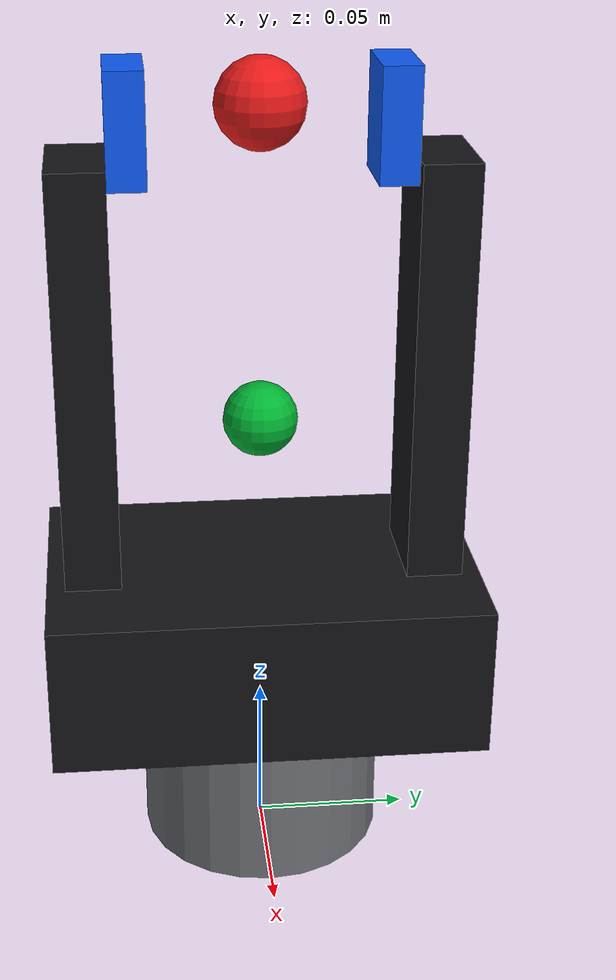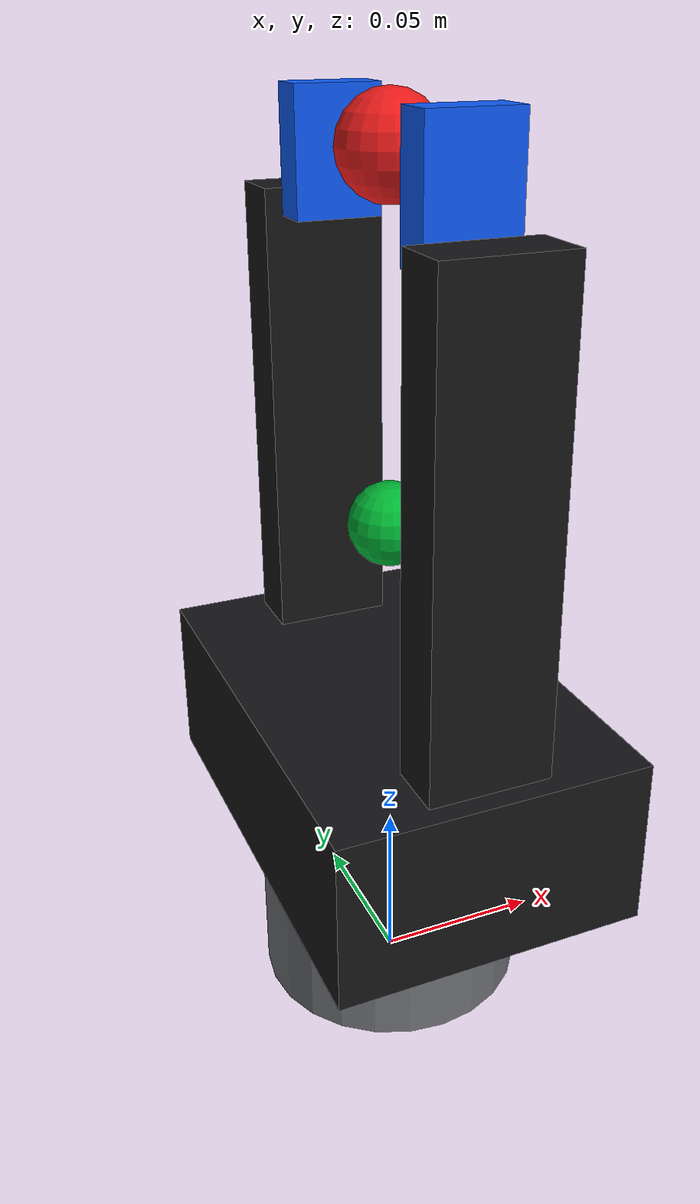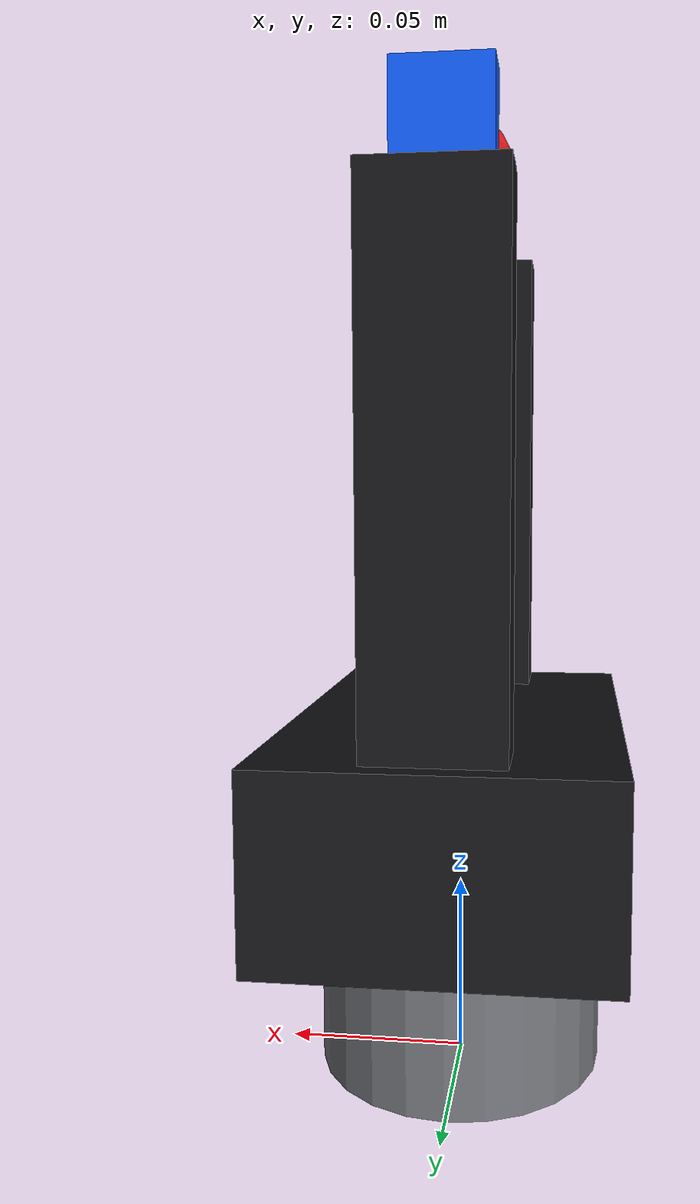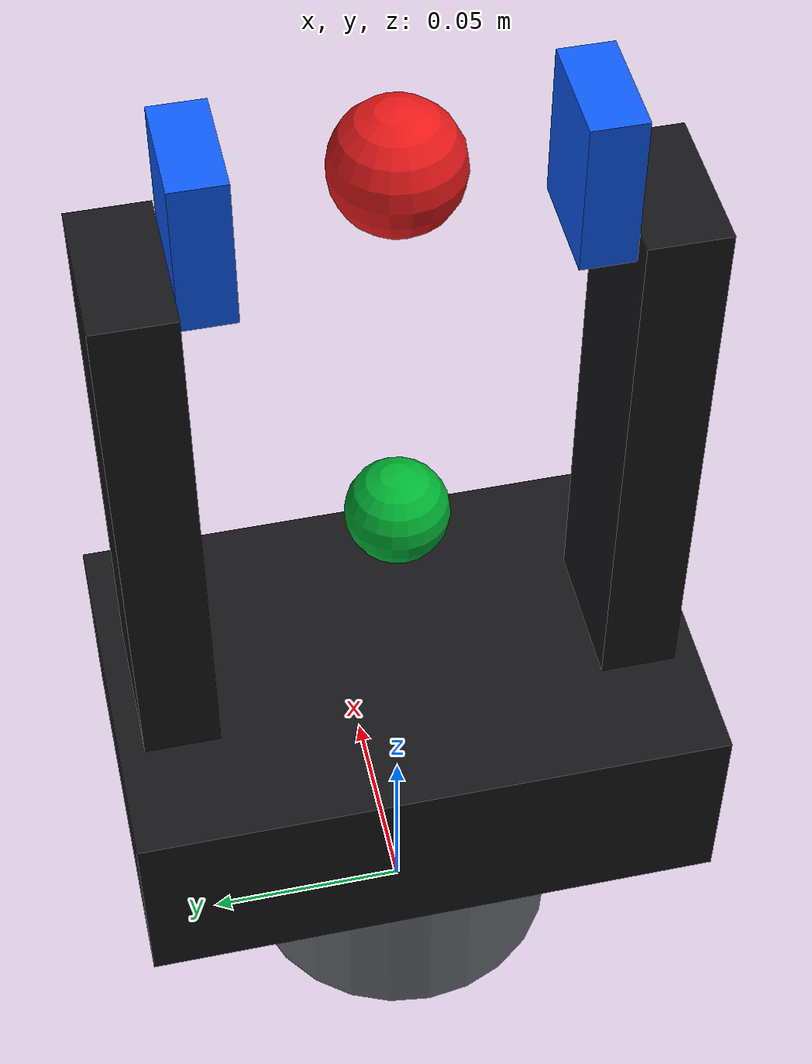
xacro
<?xml version="1.0"?>
<robot xmlns:xacro="http://www.ros.org/wiki/xacro" name="azas_rg2_link6_tcp">
  <xacro:arg name="open_tcp_offset_m" default="0.15"/>
  <xacro:arg name="closed_tcp_offset_m" default="0.25"/>

  <material name="azas_rg2_dark">
    <color rgba="0.08 0.08 0.09 1.0"/>
  </material>
  <material name="azas_rg2_metal">
    <color rgba="0.42 0.43 0.45 1.0"/>
  </material>
  <material name="azas_rg2_tip">
    <color rgba="0.05 0.35 0.95 1.0"/>
  </material>
  <material name="azas_rg2_tcp_open">
    <color rgba="0.0 0.7 0.2 1.0"/>
  </material>
  <material name="azas_rg2_tcp_closed">
    <color rgba="0.9 0.1 0.1 1.0"/>
  </material>

  <!-- Root is provided by the Doosan model. This supplemental tree only adds fixed children. -->
  <link name="link_6"/>

  <joint name="link_6_to_GripperDA_v1_jarvis" type="fixed">
    <parent link="link_6"/>
    <child link="GripperDA_v1_jarvis"/>
    <origin xyz="0 0 0" rpy="0 0 0"/>
  </joint>

  <link name="GripperDA_v1_jarvis">
    <visual>
      <origin xyz="0 0 0.025" rpy="0 0 0"/>
      <geometry>
        <cylinder radius="0.040" length="0.050"/>
      </geometry>
      <material name="azas_rg2_metal"/>
    </visual>
    <visual>
      <origin xyz="0 0 0.075" rpy="0 0 0"/>
      <geometry>
        <box size="0.090 0.140 0.050"/>
      </geometry>
      <material name="azas_rg2_dark"/>
    </visual>
    <collision>
      <origin xyz="0 0 0.025" rpy="0 0 0"/>
      <geometry>
        <cylinder radius="0.040" length="0.050"/>
      </geometry>
    </collision>
    <collision>
      <origin xyz="0 0 0.075" rpy="0 0 0"/>
      <geometry>
        <box size="0.090 0.140 0.050"/>
      </geometry>
    </collision>
  </link>

  <joint name="GripperDA_v1_jarvis_to_rg2_left_finger" type="fixed">
    <parent link="GripperDA_v1_jarvis"/>
    <child link="rg2_left_finger_visual"/>
    <origin xyz="0 0.055 0.155" rpy="0 0 0"/>
  </joint>

  <link name="rg2_left_finger_visual">
    <visual>
      <origin xyz="0 0 0" rpy="0 0 0"/>
      <geometry>
        <box size="0.035 0.018 0.160"/>
      </geometry>
      <material name="azas_rg2_dark"/>
    </visual>
    <visual>
      <origin xyz="0 -0.015 0.090" rpy="0 0 0"/>
      <geometry>
        <box size="0.025 0.012 0.035"/>
      </geometry>
      <material name="azas_rg2_tip"/>
    </visual>
    <collision>
      <origin xyz="0 0 0" rpy="0 0 0"/>
      <geometry>
        <box size="0.035 0.018 0.160"/>
      </geometry>
    </collision>
    <collision>
      <origin xyz="0 -0.015 0.090" rpy="0 0 0"/>
      <geometry>
        <box size="0.025 0.012 0.035"/>
      </geometry>
    </collision>
  </link>

  <joint name="GripperDA_v1_jarvis_to_rg2_right_finger" type="fixed">
    <parent link="GripperDA_v1_jarvis"/>
    <child link="rg2_right_finger_visual"/>
    <origin xyz="0 -0.055 0.155" rpy="0 0 0"/>
  </joint>

  <link name="rg2_right_finger_visual">
    <visual>
      <origin xyz="0 0 0" rpy="0 0 0"/>
      <geometry>
        <box size="0.035 0.018 0.160"/>
      </geometry>
      <material name="azas_rg2_dark"/>
    </visual>
    <visual>
      <origin xyz="0 0.015 0.090" rpy="0 0 0"/>
      <geometry>
        <box size="0.025 0.012 0.035"/>
      </geometry>
      <material name="azas_rg2_tip"/>
    </visual>
    <collision>
      <origin xyz="0 0 0" rpy="0 0 0"/>
      <geometry>
        <box size="0.035 0.018 0.160"/>
      </geometry>
    </collision>
    <collision>
      <origin xyz="0 0.015 0.090" rpy="0 0 0"/>
      <geometry>
        <box size="0.025 0.012 0.035"/>
      </geometry>
    </collision>
  </link>

  <joint name="GripperDA_v1_jarvis_to_rg2_open_tcp" type="fixed">
    <parent link="GripperDA_v1_jarvis"/>
    <child link="rg2_open_tcp"/>
    <origin xyz="0 0 $(arg open_tcp_offset_m)" rpy="0 0 0"/>
  </joint>

  <link name="rg2_open_tcp">
    <visual>
      <geometry>
        <sphere radius="0.012"/>
      </geometry>
      <material name="azas_rg2_tcp_open"/>
    </visual>
  </link>

  <joint name="GripperDA_v1_jarvis_to_dispenser_press_tcp" type="fixed">
    <parent link="GripperDA_v1_jarvis"/>
    <child link="dispenser_press_tcp"/>
    <origin xyz="0 0 $(arg closed_tcp_offset_m)" rpy="0 0 0"/>
  </joint>

  <link name="dispenser_press_tcp">
    <visual>
      <geometry>
        <sphere radius="0.014"/>
      </geometry>
      <material name="azas_rg2_tcp_closed"/>
    </visual>
  </link>

  <joint name="dispenser_press_tcp_alias_joint" type="fixed">
    <parent link="dispenser_press_tcp"/>
    <child link="rg2_closed_tcp"/>
    <origin xyz="0 0 0" rpy="0 0 0"/>
  </joint>

  <link name="rg2_closed_tcp"/>
</robot>
